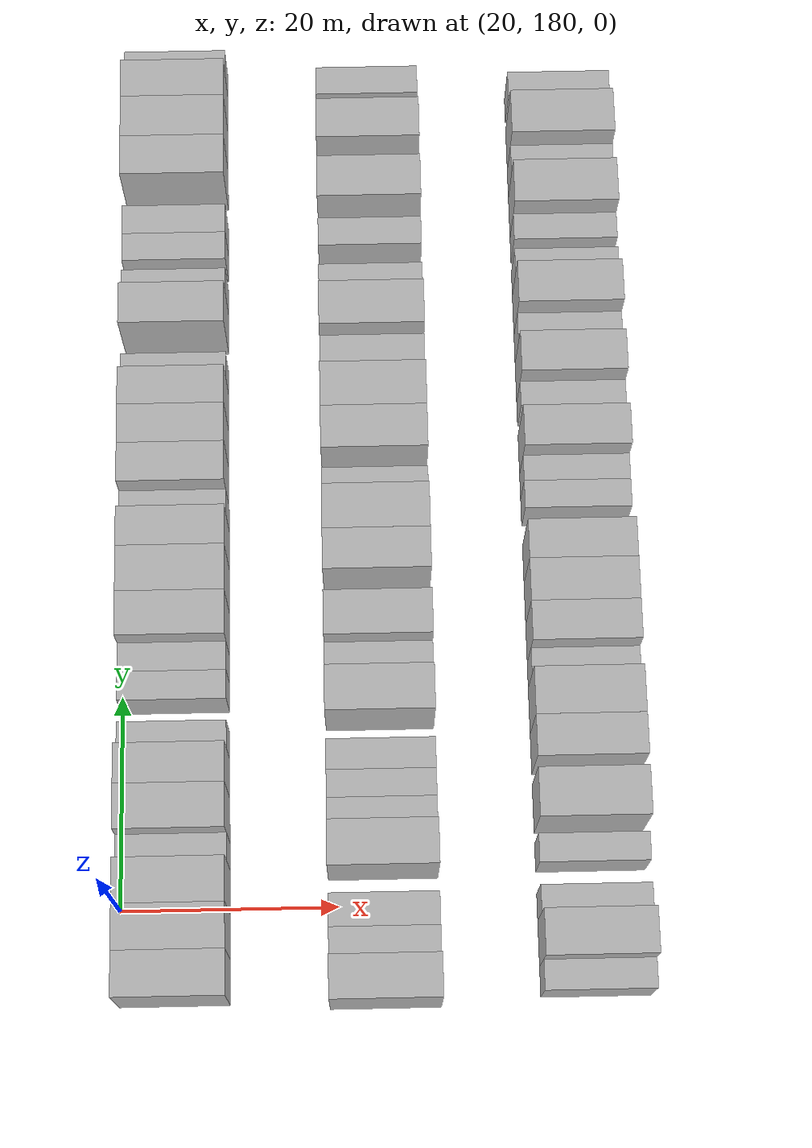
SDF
<sdf version="1.6">
 <world name="default">
  <model name="building_119">
   <static>1</static>
   <pose>25.0000 173.4342 0 0.000000 0.000000 0.000000</pose>
   <link name="link">
    <pose>0 0 4.50 0 0 0</pose>
    <collision name="collision"><geometry><box><size>10.0000 4.0543 9.0000</size></box></geometry></collision>
    <visual name="visual">
     <cast_shadows>0</cast_shadows>
     <geometry><box><size>10.0000 4.0543 9.0000</size></box></geometry>
     <material>
      <script>
       <uri>model://HANNAS_wall/materials/scripts</uri>
       <uri>model://HANNAS_wall/materials/textures</uri>
       <name>vrc/HANNAS_wall</name>
      </script>
     </material>
    </visual>
   </link>
  </model>
  <model name="building_120">
   <static>1</static>
   <pose>25.0000 177.4972 0 0.000000 0.000000 0.000000</pose>
   <link name="link">
    <pose>0 0 4.50 0 0 0</pose>
    <collision name="collision"><geometry><box><size>10.0000 4.0716 9.0000</size></box></geometry></collision>
    <visual name="visual">
     <cast_shadows>0</cast_shadows>
     <geometry><box><size>10.0000 4.0716 9.0000</size></box></geometry>
     <material>
      <script>
       <uri>model://HANNAS_wall/materials/scripts</uri>
       <uri>model://HANNAS_wall/materials/textures</uri>
       <name>vrc/HANNAS_wall</name>
      </script>
     </material>
    </visual>
   </link>
  </model>
  <model name="building_121">
   <static>1</static>
   <pose>25.0000 181.5639 0 0.000000 0.000000 0.000000</pose>
   <link name="link">
    <pose>0 0 4.50 0 0 0</pose>
    <collision name="collision"><geometry><box><size>10.0000 4.0619 9.0000</size></box></geometry></collision>
    <visual name="visual">
     <cast_shadows>0</cast_shadows>
     <geometry><box><size>10.0000 4.0619 9.0000</size></box></geometry>
     <material>
      <script>
       <uri>model://HANNAS_wall/materials/scripts</uri>
       <uri>model://HANNAS_wall/materials/textures</uri>
       <name>vrc/HANNAS_wall</name>
      </script>
     </material>
    </visual>
   </link>
  </model>
  <model name="building_122">
   <static>1</static>
   <pose>25.0000 184.8474 0 0.000000 0.000000 0.000000</pose>
   <link name="link">
    <pose>0 0 3.00 0 0 0</pose>
    <collision name="collision"><geometry><box><size>10.0000 2.5050 6.0000</size></box></geometry></collision>
    <visual name="visual">
     <cast_shadows>0</cast_shadows>
     <geometry><box><size>10.0000 2.5050 6.0000</size></box></geometry>
     <material>
      <script>
       <uri>model://HANNAS_wall/materials/scripts</uri>
       <uri>model://HANNAS_wall/materials/textures</uri>
       <name>vrc/HANNAS_wall</name>
      </script>
     </material>
    </visual>
   </link>
  </model>
  <model name="building_123">
   <static>1</static>
   <pose>25.0000 188.1382 0 0.000000 0.000000 0.000000</pose>
   <link name="link">
    <pose>0 0 4.50 0 0 0</pose>
    <collision name="collision"><geometry><box><size>10.0000 4.0767 9.0000</size></box></geometry></collision>
    <visual name="visual">
     <cast_shadows>0</cast_shadows>
     <geometry><box><size>10.0000 4.0767 9.0000</size></box></geometry>
     <material>
      <script>
       <uri>model://HANNAS_wall/materials/scripts</uri>
       <uri>model://HANNAS_wall/materials/textures</uri>
       <name>vrc/HANNAS_wall</name>
      </script>
     </material>
    </visual>
   </link>
  </model>
  <model name="building_124">
   <static>1</static>
   <pose>25.0000 192.0064 0 0.000000 0.000000 0.000000</pose>
   <link name="link">
    <pose>0 0 4.50 0 0 0</pose>
    <collision name="collision"><geometry><box><size>10.0000 3.6597 9.0000</size></box></geometry></collision>
    <visual name="visual">
     <cast_shadows>0</cast_shadows>
     <geometry><box><size>10.0000 3.6597 9.0000</size></box></geometry>
     <material>
      <script>
       <uri>model://HANNAS_wall/materials/scripts</uri>
       <uri>model://HANNAS_wall/materials/textures</uri>
       <name>vrc/HANNAS_wall</name>
      </script>
     </material>
    </visual>
   </link>
  </model>
  <model name="building_125">
   <static>1</static>
   <pose>25.0000 195.1112 0 0.000000 0.000000 0.000000</pose>
   <link name="link">
    <pose>0 0 3.00 0 0 0</pose>
    <collision name="collision"><geometry><box><size>10.0000 2.5499 6.0000</size></box></geometry></collision>
    <visual name="visual">
     <cast_shadows>0</cast_shadows>
     <geometry><box><size>10.0000 2.5499 6.0000</size></box></geometry>
     <material>
      <script>
       <uri>model://HANNAS_wall/materials/scripts</uri>
       <uri>model://HANNAS_wall/materials/textures</uri>
       <name>vrc/HANNAS_wall</name>
      </script>
     </material>
    </visual>
   </link>
  </model>
  <model name="building_126">
   <static>1</static>
   <pose>25.0000 199.7304 0 0.000000 0.000000 0.000000</pose>
   <link name="link">
    <pose>0 0 3.00 0 0 0</pose>
    <collision name="collision"><geometry><box><size>10.0000 2.6884 6.0000</size></box></geometry></collision>
    <visual name="visual">
     <cast_shadows>0</cast_shadows>
     <geometry><box><size>10.0000 2.6884 6.0000</size></box></geometry>
     <material>
      <script>
       <uri>model://HANNAS_wall/materials/scripts</uri>
       <uri>model://HANNAS_wall/materials/textures</uri>
       <name>vrc/HANNAS_wall</name>
      </script>
     </material>
    </visual>
   </link>
  </model>
  <model name="building_127">
   <static>1</static>
   <pose>25.0000 202.4162 0 0.000000 0.000000 0.000000</pose>
   <link name="link">
    <pose>0 0 3.00 0 0 0</pose>
    <collision name="collision"><geometry><box><size>10.0000 2.6832 6.0000</size></box></geometry></collision>
    <visual name="visual">
     <cast_shadows>0</cast_shadows>
     <geometry><box><size>10.0000 2.6832 6.0000</size></box></geometry>
     <material>
      <script>
       <uri>model://HANNAS_wall/materials/scripts</uri>
       <uri>model://HANNAS_wall/materials/textures</uri>
       <name>vrc/HANNAS_wall</name>
      </script>
     </material>
    </visual>
   </link>
  </model>
  <model name="building_128">
   <static>1</static>
   <pose>25.0000 205.8322 0 0.000000 0.000000 0.000000</pose>
   <link name="link">
    <pose>0 0 4.50 0 0 0</pose>
    <collision name="collision"><geometry><box><size>10.0000 4.1487 9.0000</size></box></geometry></collision>
    <visual name="visual">
     <cast_shadows>0</cast_shadows>
     <geometry><box><size>10.0000 4.1487 9.0000</size></box></geometry>
     <material>
      <script>
       <uri>model://HANNAS_wall/materials/scripts</uri>
       <uri>model://HANNAS_wall/materials/textures</uri>
       <name>vrc/HANNAS_wall</name>
      </script>
     </material>
    </visual>
   </link>
  </model>
  <model name="building_129">
   <static>1</static>
   <pose>25.0000 210.0730 0 0.000000 0.000000 0.000000</pose>
   <link name="link">
    <pose>0 0 4.50 0 0 0</pose>
    <collision name="collision"><geometry><box><size>10.0000 4.3329 9.0000</size></box></geometry></collision>
    <visual name="visual">
     <cast_shadows>0</cast_shadows>
     <geometry><box><size>10.0000 4.3329 9.0000</size></box></geometry>
     <material>
      <script>
       <uri>model://HANNAS_wall/materials/scripts</uri>
       <uri>model://HANNAS_wall/materials/textures</uri>
       <name>vrc/HANNAS_wall</name>
      </script>
     </material>
    </visual>
   </link>
  </model>
  <model name="building_130">
   <static>1</static>
   <pose>25.0000 214.1266 0 0.000000 0.000000 0.000000</pose>
   <link name="link">
    <pose>0 0 4.50 0 0 0</pose>
    <collision name="collision"><geometry><box><size>10.0000 3.7743 9.0000</size></box></geometry></collision>
    <visual name="visual">
     <cast_shadows>0</cast_shadows>
     <geometry><box><size>10.0000 3.7743 9.0000</size></box></geometry>
     <material>
      <script>
       <uri>model://HANNAS_wall/materials/scripts</uri>
       <uri>model://HANNAS_wall/materials/textures</uri>
       <name>vrc/HANNAS_wall</name>
      </script>
     </material>
    </visual>
   </link>
  </model>
  <model name="building_131">
   <static>1</static>
   <pose>25.0000 217.2199 0 0.000000 0.000000 0.000000</pose>
   <link name="link">
    <pose>0 0 3.00 0 0 0</pose>
    <collision name="collision"><geometry><box><size>10.0000 2.4122 6.0000</size></box></geometry></collision>
    <visual name="visual">
     <cast_shadows>0</cast_shadows>
     <geometry><box><size>10.0000 2.4122 6.0000</size></box></geometry>
     <material>
      <script>
       <uri>model://HANNAS_wall/materials/scripts</uri>
       <uri>model://HANNAS_wall/materials/textures</uri>
       <name>vrc/HANNAS_wall</name>
      </script>
     </material>
    </visual>
   </link>
  </model>
  <model name="building_132">
   <static>1</static>
   <pose>25.0000 220.3146 0 0.000000 0.000000 0.000000</pose>
   <link name="link">
    <pose>0 0 4.50 0 0 0</pose>
    <collision name="collision"><geometry><box><size>10.0000 3.7773 9.0000</size></box></geometry></collision>
    <visual name="visual">
     <cast_shadows>0</cast_shadows>
     <geometry><box><size>10.0000 3.7773 9.0000</size></box></geometry>
     <material>
      <script>
       <uri>model://HANNAS_wall/materials/scripts</uri>
       <uri>model://HANNAS_wall/materials/textures</uri>
       <name>vrc/HANNAS_wall</name>
      </script>
     </material>
    </visual>
   </link>
  </model>
  <model name="building_133">
   <static>1</static>
   <pose>25.0000 224.0953 0 0.000000 0.000000 0.000000</pose>
   <link name="link">
    <pose>0 0 4.50 0 0 0</pose>
    <collision name="collision"><geometry><box><size>10.0000 3.7841 9.0000</size></box></geometry></collision>
    <visual name="visual">
     <cast_shadows>0</cast_shadows>
     <geometry><box><size>10.0000 3.7841 9.0000</size></box></geometry>
     <material>
      <script>
       <uri>model://HANNAS_wall/materials/scripts</uri>
       <uri>model://HANNAS_wall/materials/textures</uri>
       <name>vrc/HANNAS_wall</name>
      </script>
     </material>
    </visual>
   </link>
  </model>
  <model name="building_134">
   <static>1</static>
   <pose>25.0000 227.8625 0 0.000000 0.000000 0.000000</pose>
   <link name="link">
    <pose>0 0 4.50 0 0 0</pose>
    <collision name="collision"><geometry><box><size>10.0000 3.7503 9.0000</size></box></geometry></collision>
    <visual name="visual">
     <cast_shadows>0</cast_shadows>
     <geometry><box><size>10.0000 3.7503 9.0000</size></box></geometry>
     <material>
      <script>
       <uri>model://HANNAS_wall/materials/scripts</uri>
       <uri>model://HANNAS_wall/materials/textures</uri>
       <name>vrc/HANNAS_wall</name>
      </script>
     </material>
    </visual>
   </link>
  </model>
  <model name="building_135">
   <static>1</static>
   <pose>25.0000 230.9534 0 0.000000 0.000000 0.000000</pose>
   <link name="link">
    <pose>0 0 3.00 0 0 0</pose>
    <collision name="collision"><geometry><box><size>10.0000 2.4314 6.0000</size></box></geometry></collision>
    <visual name="visual">
     <cast_shadows>0</cast_shadows>
     <geometry><box><size>10.0000 2.4314 6.0000</size></box></geometry>
     <material>
      <script>
       <uri>model://HANNAS_wall/materials/scripts</uri>
       <uri>model://HANNAS_wall/materials/textures</uri>
       <name>vrc/HANNAS_wall</name>
      </script>
     </material>
    </visual>
   </link>
  </model>
  <model name="building_136">
   <static>1</static>
   <pose>25.0000 236.1992 0 0.000000 0.000000 0.000000</pose>
   <link name="link">
    <pose>0 0 4.50 0 0 0</pose>
    <collision name="collision"><geometry><box><size>10.0000 4.0601 9.0000</size></box></geometry></collision>
    <visual name="visual">
     <cast_shadows>0</cast_shadows>
     <geometry><box><size>10.0000 4.0601 9.0000</size></box></geometry>
     <material>
      <script>
       <uri>model://HANNAS_wall/materials/scripts</uri>
       <uri>model://HANNAS_wall/materials/textures</uri>
       <name>vrc/HANNAS_wall</name>
      </script>
     </material>
    </visual>
   </link>
  </model>
  <model name="building_137">
   <static>1</static>
   <pose>25.0000 239.5168 0 0.000000 0.000000 0.000000</pose>
   <link name="link">
    <pose>0 0 3.00 0 0 0</pose>
    <collision name="collision"><geometry><box><size>10.0000 2.5751 6.0000</size></box></geometry></collision>
    <visual name="visual">
     <cast_shadows>0</cast_shadows>
     <geometry><box><size>10.0000 2.5751 6.0000</size></box></geometry>
     <material>
      <script>
       <uri>model://HANNAS_wall/materials/scripts</uri>
       <uri>model://HANNAS_wall/materials/textures</uri>
       <name>vrc/HANNAS_wall</name>
      </script>
     </material>
    </visual>
   </link>
  </model>
  <model name="building_138">
   <static>1</static>
   <pose>25.0000 243.2048 0 0.000000 0.000000 0.000000</pose>
   <link name="link">
    <pose>0 0 3.00 0 0 0</pose>
    <collision name="collision"><geometry><box><size>10.0000 2.8009 6.0000</size></box></geometry></collision>
    <visual name="visual">
     <cast_shadows>0</cast_shadows>
     <geometry><box><size>10.0000 2.8009 6.0000</size></box></geometry>
     <material>
      <script>
       <uri>model://HANNAS_wall/materials/scripts</uri>
       <uri>model://HANNAS_wall/materials/textures</uri>
       <name>vrc/HANNAS_wall</name>
      </script>
     </material>
    </visual>
   </link>
  </model>
  <model name="building_139">
   <static>1</static>
   <pose>25.0000 246.0680 0 0.000000 0.000000 0.000000</pose>
   <link name="link">
    <pose>0 0 3.00 0 0 0</pose>
    <collision name="collision"><geometry><box><size>10.0000 2.9255 6.0000</size></box></geometry></collision>
    <visual name="visual">
     <cast_shadows>0</cast_shadows>
     <geometry><box><size>10.0000 2.9255 6.0000</size></box></geometry>
     <material>
      <script>
       <uri>model://HANNAS_wall/materials/scripts</uri>
       <uri>model://HANNAS_wall/materials/textures</uri>
       <name>vrc/HANNAS_wall</name>
      </script>
     </material>
    </visual>
   </link>
  </model>
  <model name="building_140">
   <static>1</static>
   <pose>25.0000 251.5489 0 0.000000 0.000000 0.000000</pose>
   <link name="link">
    <pose>0 0 4.50 0 0 0</pose>
    <collision name="collision"><geometry><box><size>10.0000 4.0363 9.0000</size></box></geometry></collision>
    <visual name="visual">
     <cast_shadows>0</cast_shadows>
     <geometry><box><size>10.0000 4.0363 9.0000</size></box></geometry>
     <material>
      <script>
       <uri>model://HANNAS_wall/materials/scripts</uri>
       <uri>model://HANNAS_wall/materials/textures</uri>
       <name>vrc/HANNAS_wall</name>
      </script>
     </material>
    </visual>
   </link>
  </model>
  <model name="building_141">
   <static>1</static>
   <pose>25.0000 255.6926 0 0.000000 0.000000 0.000000</pose>
   <link name="link">
    <pose>0 0 4.50 0 0 0</pose>
    <collision name="collision"><geometry><box><size>10.0000 4.2512 9.0000</size></box></geometry></collision>
    <visual name="visual">
     <cast_shadows>0</cast_shadows>
     <geometry><box><size>10.0000 4.2512 9.0000</size></box></geometry>
     <material>
      <script>
       <uri>model://HANNAS_wall/materials/scripts</uri>
       <uri>model://HANNAS_wall/materials/textures</uri>
       <name>vrc/HANNAS_wall</name>
      </script>
     </material>
    </visual>
   </link>
  </model>
  <model name="building_142">
   <static>1</static>
   <pose>25.0000 259.7587 0 0.000000 0.000000 0.000000</pose>
   <link name="link">
    <pose>0 0 4.50 0 0 0</pose>
    <collision name="collision"><geometry><box><size>10.0000 3.8809 9.0000</size></box></geometry></collision>
    <visual name="visual">
     <cast_shadows>0</cast_shadows>
     <geometry><box><size>10.0000 3.8809 9.0000</size></box></geometry>
     <material>
      <script>
       <uri>model://HANNAS_wall/materials/scripts</uri>
       <uri>model://HANNAS_wall/materials/textures</uri>
       <name>vrc/HANNAS_wall</name>
      </script>
     </material>
    </visual>
   </link>
  </model>
  <model name="building_143">
   <static>1</static>
   <pose>25.0000 262.9353 0 0.000000 0.000000 0.000000</pose>
   <link name="link">
    <pose>0 0 3.00 0 0 0</pose>
    <collision name="collision"><geometry><box><size>10.0000 2.4724 6.0000</size></box></geometry></collision>
    <visual name="visual">
     <cast_shadows>0</cast_shadows>
     <geometry><box><size>10.0000 2.4724 6.0000</size></box></geometry>
     <material>
      <script>
       <uri>model://HANNAS_wall/materials/scripts</uri>
       <uri>model://HANNAS_wall/materials/textures</uri>
       <name>vrc/HANNAS_wall</name>
      </script>
     </material>
    </visual>
   </link>
  </model>
  <model name="building_287">
   <static>1</static>
   <pose>44.0000 172.8153 0 0.000000 0.000000 0.000000</pose>
   <link name="link">
    <pose>0 0 4.50 0 0 0</pose>
    <collision name="collision"><geometry><box><size>10.0000 3.8922 9.0000</size></box></geometry></collision>
    <visual name="visual">
     <cast_shadows>0</cast_shadows>
     <geometry><box><size>10.0000 3.8922 9.0000</size></box></geometry>
     <material>
      <script>
       <uri>model://HANNAS_wall/materials/scripts</uri>
       <uri>model://HANNAS_wall/materials/textures</uri>
       <name>vrc/HANNAS_wall</name>
      </script>
     </material>
    </visual>
   </link>
  </model>
  <model name="building_288">
   <static>1</static>
   <pose>44.0000 176.1317 0 0.000000 0.000000 0.000000</pose>
   <link name="link">
    <pose>0 0 3.00 0 0 0</pose>
    <collision name="collision"><geometry><box><size>10.0000 2.7406 6.0000</size></box></geometry></collision>
    <visual name="visual">
     <cast_shadows>0</cast_shadows>
     <geometry><box><size>10.0000 2.7406 6.0000</size></box></geometry>
     <material>
      <script>
       <uri>model://HANNAS_wall/materials/scripts</uri>
       <uri>model://HANNAS_wall/materials/textures</uri>
       <name>vrc/HANNAS_wall</name>
      </script>
     </material>
    </visual>
   </link>
  </model>
  <model name="building_289">
   <static>1</static>
   <pose>44.0000 178.9980 0 0.000000 0.000000 0.000000</pose>
   <link name="link">
    <pose>0 0 3.00 0 0 0</pose>
    <collision name="collision"><geometry><box><size>10.0000 2.9919 6.0000</size></box></geometry></collision>
    <visual name="visual">
     <cast_shadows>0</cast_shadows>
     <geometry><box><size>10.0000 2.9919 6.0000</size></box></geometry>
     <material>
      <script>
       <uri>model://HANNAS_wall/materials/scripts</uri>
       <uri>model://HANNAS_wall/materials/textures</uri>
       <name>vrc/HANNAS_wall</name>
      </script>
     </material>
    </visual>
   </link>
  </model>
  <model name="building_290">
   <static>1</static>
   <pose>44.0000 184.5447 0 0.000000 0.000000 0.000000</pose>
   <link name="link">
    <pose>0 0 4.50 0 0 0</pose>
    <collision name="collision"><geometry><box><size>10.0000 4.1014 9.0000</size></box></geometry></collision>
    <visual name="visual">
     <cast_shadows>0</cast_shadows>
     <geometry><box><size>10.0000 4.1014 9.0000</size></box></geometry>
     <material>
      <script>
       <uri>model://HANNAS_wall/materials/scripts</uri>
       <uri>model://HANNAS_wall/materials/textures</uri>
       <name>vrc/HANNAS_wall</name>
      </script>
     </material>
    </visual>
   </link>
  </model>
  <model name="building_291">
   <static>1</static>
   <pose>44.0000 187.8324 0 0.000000 0.000000 0.000000</pose>
   <link name="link">
    <pose>0 0 3.00 0 0 0</pose>
    <collision name="collision"><geometry><box><size>10.0000 2.4740 6.0000</size></box></geometry></collision>
    <visual name="visual">
     <cast_shadows>0</cast_shadows>
     <geometry><box><size>10.0000 2.4740 6.0000</size></box></geometry>
     <material>
      <script>
       <uri>model://HANNAS_wall/materials/scripts</uri>
       <uri>model://HANNAS_wall/materials/textures</uri>
       <name>vrc/HANNAS_wall</name>
      </script>
     </material>
    </visual>
   </link>
  </model>
  <model name="building_292">
   <static>1</static>
   <pose>44.0000 190.3368 0 0.000000 0.000000 0.000000</pose>
   <link name="link">
    <pose>0 0 3.00 0 0 0</pose>
    <collision name="collision"><geometry><box><size>10.0000 2.5349 6.0000</size></box></geometry></collision>
    <visual name="visual">
     <cast_shadows>0</cast_shadows>
     <geometry><box><size>10.0000 2.5349 6.0000</size></box></geometry>
     <material>
      <script>
       <uri>model://HANNAS_wall/materials/scripts</uri>
       <uri>model://HANNAS_wall/materials/textures</uri>
       <name>vrc/HANNAS_wall</name>
      </script>
     </material>
    </visual>
   </link>
  </model>
  <model name="building_293">
   <static>1</static>
   <pose>44.0000 193.0226 0 0.000000 0.000000 0.000000</pose>
   <link name="link">
    <pose>0 0 3.00 0 0 0</pose>
    <collision name="collision"><geometry><box><size>10.0000 2.8368 6.0000</size></box></geometry></collision>
    <visual name="visual">
     <cast_shadows>0</cast_shadows>
     <geometry><box><size>10.0000 2.8368 6.0000</size></box></geometry>
     <material>
      <script>
       <uri>model://HANNAS_wall/materials/scripts</uri>
       <uri>model://HANNAS_wall/materials/textures</uri>
       <name>vrc/HANNAS_wall</name>
      </script>
     </material>
    </visual>
   </link>
  </model>
  <model name="building_294">
   <static>1</static>
   <pose>44.0000 198.5427 0 0.000000 0.000000 0.000000</pose>
   <link name="link">
    <pose>0 0 4.50 0 0 0</pose>
    <collision name="collision"><geometry><box><size>10.0000 4.2035 9.0000</size></box></geometry></collision>
    <visual name="visual">
     <cast_shadows>0</cast_shadows>
     <geometry><box><size>10.0000 4.2035 9.0000</size></box></geometry>
     <material>
      <script>
       <uri>model://HANNAS_wall/materials/scripts</uri>
       <uri>model://HANNAS_wall/materials/textures</uri>
       <name>vrc/HANNAS_wall</name>
      </script>
     </material>
    </visual>
   </link>
  </model>
  <model name="building_295">
   <static>1</static>
   <pose>44.0000 202.0481 0 0.000000 0.000000 0.000000</pose>
   <link name="link">
    <pose>0 0 3.00 0 0 0</pose>
    <collision name="collision"><geometry><box><size>10.0000 2.8074 6.0000</size></box></geometry></collision>
    <visual name="visual">
     <cast_shadows>0</cast_shadows>
     <geometry><box><size>10.0000 2.8074 6.0000</size></box></geometry>
     <material>
      <script>
       <uri>model://HANNAS_wall/materials/scripts</uri>
       <uri>model://HANNAS_wall/materials/textures</uri>
       <name>vrc/HANNAS_wall</name>
      </script>
     </material>
    </visual>
   </link>
  </model>
  <model name="building_296">
   <static>1</static>
   <pose>44.0000 205.5400 0 0.000000 0.000000 0.000000</pose>
   <link name="link">
    <pose>0 0 4.50 0 0 0</pose>
    <collision name="collision"><geometry><box><size>10.0000 4.1763 9.0000</size></box></geometry></collision>
    <visual name="visual">
     <cast_shadows>0</cast_shadows>
     <geometry><box><size>10.0000 4.1763 9.0000</size></box></geometry>
     <material>
      <script>
       <uri>model://HANNAS_wall/materials/scripts</uri>
       <uri>model://HANNAS_wall/materials/textures</uri>
       <name>vrc/HANNAS_wall</name>
      </script>
     </material>
    </visual>
   </link>
  </model>
  <model name="building_297">
   <static>1</static>
   <pose>44.0000 211.5687 0 0.000000 0.000000 0.000000</pose>
   <link name="link">
    <pose>0 0 4.50 0 0 0</pose>
    <collision name="collision"><geometry><box><size>10.0000 3.8811 9.0000</size></box></geometry></collision>
    <visual name="visual">
     <cast_shadows>0</cast_shadows>
     <geometry><box><size>10.0000 3.8811 9.0000</size></box></geometry>
     <material>
      <script>
       <uri>model://HANNAS_wall/materials/scripts</uri>
       <uri>model://HANNAS_wall/materials/textures</uri>
       <name>vrc/HANNAS_wall</name>
      </script>
     </material>
    </visual>
   </link>
  </model>
  <model name="building_298">
   <static>1</static>
   <pose>44.0000 215.6663 0 0.000000 0.000000 0.000000</pose>
   <link name="link">
    <pose>0 0 4.50 0 0 0</pose>
    <collision name="collision"><geometry><box><size>10.0000 4.3139 9.0000</size></box></geometry></collision>
    <visual name="visual">
     <cast_shadows>0</cast_shadows>
     <geometry><box><size>10.0000 4.3139 9.0000</size></box></geometry>
     <material>
      <script>
       <uri>model://HANNAS_wall/materials/scripts</uri>
       <uri>model://HANNAS_wall/materials/textures</uri>
       <name>vrc/HANNAS_wall</name>
      </script>
     </material>
    </visual>
   </link>
  </model>
  <model name="building_299">
   <static>1</static>
   <pose>44.0000 219.0847 0 0.000000 0.000000 0.000000</pose>
   <link name="link">
    <pose>0 0 3.00 0 0 0</pose>
    <collision name="collision"><geometry><box><size>10.0000 2.5230 6.0000</size></box></geometry></collision>
    <visual name="visual">
     <cast_shadows>0</cast_shadows>
     <geometry><box><size>10.0000 2.5230 6.0000</size></box></geometry>
     <material>
      <script>
       <uri>model://HANNAS_wall/materials/scripts</uri>
       <uri>model://HANNAS_wall/materials/textures</uri>
       <name>vrc/HANNAS_wall</name>
      </script>
     </material>
    </visual>
   </link>
  </model>
  <model name="building_300">
   <static>1</static>
   <pose>44.0000 223.4150 0 0.000000 0.000000 0.000000</pose>
   <link name="link">
    <pose>0 0 4.50 0 0 0</pose>
    <collision name="collision"><geometry><box><size>10.0000 4.1376 9.0000</size></box></geometry></collision>
    <visual name="visual">
     <cast_shadows>0</cast_shadows>
     <geometry><box><size>10.0000 4.1376 9.0000</size></box></geometry>
     <material>
      <script>
       <uri>model://HANNAS_wall/materials/scripts</uri>
       <uri>model://HANNAS_wall/materials/textures</uri>
       <name>vrc/HANNAS_wall</name>
      </script>
     </material>
    </visual>
   </link>
  </model>
  <model name="building_301">
   <static>1</static>
   <pose>44.0000 227.6644 0 0.000000 0.000000 0.000000</pose>
   <link name="link">
    <pose>0 0 4.50 0 0 0</pose>
    <collision name="collision"><geometry><box><size>10.0000 4.3613 9.0000</size></box></geometry></collision>
    <visual name="visual">
     <cast_shadows>0</cast_shadows>
     <geometry><box><size>10.0000 4.3613 9.0000</size></box></geometry>
     <material>
      <script>
       <uri>model://HANNAS_wall/materials/scripts</uri>
       <uri>model://HANNAS_wall/materials/textures</uri>
       <name>vrc/HANNAS_wall</name>
      </script>
     </material>
    </visual>
   </link>
  </model>
  <model name="building_302">
   <static>1</static>
   <pose>44.0000 232.2528 0 0.000000 0.000000 0.000000</pose>
   <link name="link">
    <pose>0 0 3.00 0 0 0</pose>
    <collision name="collision"><geometry><box><size>10.0000 2.8153 6.0000</size></box></geometry></collision>
    <visual name="visual">
     <cast_shadows>0</cast_shadows>
     <geometry><box><size>10.0000 2.8153 6.0000</size></box></geometry>
     <material>
      <script>
       <uri>model://HANNAS_wall/materials/scripts</uri>
       <uri>model://HANNAS_wall/materials/textures</uri>
       <name>vrc/HANNAS_wall</name>
      </script>
     </material>
    </visual>
   </link>
  </model>
  <model name="building_303">
   <static>1</static>
   <pose>44.0000 235.8449 0 0.000000 0.000000 0.000000</pose>
   <link name="link">
    <pose>0 0 4.50 0 0 0</pose>
    <collision name="collision"><geometry><box><size>10.0000 4.3689 9.0000</size></box></geometry></collision>
    <visual name="visual">
     <cast_shadows>0</cast_shadows>
     <geometry><box><size>10.0000 4.3689 9.0000</size></box></geometry>
     <material>
      <script>
       <uri>model://HANNAS_wall/materials/scripts</uri>
       <uri>model://HANNAS_wall/materials/textures</uri>
       <name>vrc/HANNAS_wall</name>
      </script>
     </material>
    </visual>
   </link>
  </model>
  <model name="building_304">
   <static>1</static>
   <pose>44.0000 239.5217 0 0.000000 0.000000 0.000000</pose>
   <link name="link">
    <pose>0 0 3.00 0 0 0</pose>
    <collision name="collision"><geometry><box><size>10.0000 2.9846 6.0000</size></box></geometry></collision>
    <visual name="visual">
     <cast_shadows>0</cast_shadows>
     <geometry><box><size>10.0000 2.9846 6.0000</size></box></geometry>
     <material>
      <script>
       <uri>model://HANNAS_wall/materials/scripts</uri>
       <uri>model://HANNAS_wall/materials/textures</uri>
       <name>vrc/HANNAS_wall</name>
      </script>
     </material>
    </visual>
   </link>
  </model>
  <model name="building_305">
   <static>1</static>
   <pose>44.0000 244.4302 0 0.000000 0.000000 0.000000</pose>
   <link name="link">
    <pose>0 0 3.00 0 0 0</pose>
    <collision name="collision"><geometry><box><size>10.0000 2.8325 6.0000</size></box></geometry></collision>
    <visual name="visual">
     <cast_shadows>0</cast_shadows>
     <geometry><box><size>10.0000 2.8325 6.0000</size></box></geometry>
     <material>
      <script>
       <uri>model://HANNAS_wall/materials/scripts</uri>
       <uri>model://HANNAS_wall/materials/textures</uri>
       <name>vrc/HANNAS_wall</name>
      </script>
     </material>
    </visual>
   </link>
  </model>
  <model name="building_306">
   <static>1</static>
   <pose>44.0000 248.9562 0 0.000000 0.000000 0.000000</pose>
   <link name="link">
    <pose>0 0 4.50 0 0 0</pose>
    <collision name="collision"><geometry><box><size>10.0000 4.2195 9.0000</size></box></geometry></collision>
    <visual name="visual">
     <cast_shadows>0</cast_shadows>
     <geometry><box><size>10.0000 4.2195 9.0000</size></box></geometry>
     <material>
      <script>
       <uri>model://HANNAS_wall/materials/scripts</uri>
       <uri>model://HANNAS_wall/materials/textures</uri>
       <name>vrc/HANNAS_wall</name>
      </script>
     </material>
    </visual>
   </link>
  </model>
  <model name="building_307">
   <static>1</static>
   <pose>44.0000 255.1205 0 0.000000 0.000000 0.000000</pose>
   <link name="link">
    <pose>0 0 4.50 0 0 0</pose>
    <collision name="collision"><geometry><box><size>10.0000 4.1092 9.0000</size></box></geometry></collision>
    <visual name="visual">
     <cast_shadows>0</cast_shadows>
     <geometry><box><size>10.0000 4.1092 9.0000</size></box></geometry>
     <material>
      <script>
       <uri>model://HANNAS_wall/materials/scripts</uri>
       <uri>model://HANNAS_wall/materials/textures</uri>
       <name>vrc/HANNAS_wall</name>
      </script>
     </material>
    </visual>
   </link>
  </model>
  <model name="building_308">
   <static>1</static>
   <pose>44.0000 260.6276 0 0.000000 0.000000 0.000000</pose>
   <link name="link">
    <pose>0 0 3.00 0 0 0</pose>
    <collision name="collision"><geometry><box><size>10.0000 2.9050 6.0000</size></box></geometry></collision>
    <visual name="visual">
     <cast_shadows>0</cast_shadows>
     <geometry><box><size>10.0000 2.9050 6.0000</size></box></geometry>
     <material>
      <script>
       <uri>model://HANNAS_wall/materials/scripts</uri>
       <uri>model://HANNAS_wall/materials/textures</uri>
       <name>vrc/HANNAS_wall</name>
      </script>
     </material>
    </visual>
   </link>
  </model>
  <model name="building_471">
   <static>1</static>
   <pose>63.0000 172.9059 0 0.000000 0.000000 0.000000</pose>
   <link name="link">
    <pose>0 0 3.00 0 0 0</pose>
    <collision name="collision"><geometry><box><size>10.0000 2.6999 6.0000</size></box></geometry></collision>
    <visual name="visual">
     <cast_shadows>0</cast_shadows>
     <geometry><box><size>10.0000 2.6999 6.0000</size></box></geometry>
     <material>
      <script>
       <uri>model://HANNAS_wall/materials/scripts</uri>
       <uri>model://HANNAS_wall/materials/textures</uri>
       <name>vrc/HANNAS_wall</name>
      </script>
     </material>
    </visual>
   </link>
  </model>
  <model name="building_472">
   <static>1</static>
   <pose>63.0000 176.3193 0 0.000000 0.000000 0.000000</pose>
   <link name="link">
    <pose>0 0 4.50 0 0 0</pose>
    <collision name="collision"><geometry><box><size>10.0000 4.1270 9.0000</size></box></geometry></collision>
    <visual name="visual">
     <cast_shadows>0</cast_shadows>
     <geometry><box><size>10.0000 4.1270 9.0000</size></box></geometry>
     <material>
      <script>
       <uri>model://HANNAS_wall/materials/scripts</uri>
       <uri>model://HANNAS_wall/materials/textures</uri>
       <name>vrc/HANNAS_wall</name>
      </script>
     </material>
    </visual>
   </link>
  </model>
  <model name="building_473">
   <static>1</static>
   <pose>63.0000 179.6188 0 0.000000 0.000000 0.000000</pose>
   <link name="link">
    <pose>0 0 3.00 0 0 0</pose>
    <collision name="collision"><geometry><box><size>10.0000 2.4719 6.0000</size></box></geometry></collision>
    <visual name="visual">
     <cast_shadows>0</cast_shadows>
     <geometry><box><size>10.0000 2.4719 6.0000</size></box></geometry>
     <material>
      <script>
       <uri>model://HANNAS_wall/materials/scripts</uri>
       <uri>model://HANNAS_wall/materials/textures</uri>
       <name>vrc/HANNAS_wall</name>
      </script>
     </material>
    </visual>
   </link>
  </model>
  <model name="building_474">
   <static>1</static>
   <pose>63.0000 184.1493 0 0.000000 0.000000 0.000000</pose>
   <link name="link">
    <pose>0 0 3.00 0 0 0</pose>
    <collision name="collision"><geometry><box><size>10.0000 2.5891 6.0000</size></box></geometry></collision>
    <visual name="visual">
     <cast_shadows>0</cast_shadows>
     <geometry><box><size>10.0000 2.5891 6.0000</size></box></geometry>
     <material>
      <script>
       <uri>model://HANNAS_wall/materials/scripts</uri>
       <uri>model://HANNAS_wall/materials/textures</uri>
       <name>vrc/HANNAS_wall</name>
      </script>
     </material>
    </visual>
   </link>
  </model>
  <model name="building_475">
   <static>1</static>
   <pose>63.0000 188.6700 0 0.000000 0.000000 0.000000</pose>
   <link name="link">
    <pose>0 0 4.50 0 0 0</pose>
    <collision name="collision"><geometry><box><size>10.0000 4.4522 9.0000</size></box></geometry></collision>
    <visual name="visual">
     <cast_shadows>0</cast_shadows>
     <geometry><box><size>10.0000 4.4522 9.0000</size></box></geometry>
     <material>
      <script>
       <uri>model://HANNAS_wall/materials/scripts</uri>
       <uri>model://HANNAS_wall/materials/textures</uri>
       <name>vrc/HANNAS_wall</name>
      </script>
     </material>
    </visual>
   </link>
  </model>
  <model name="building_476">
   <static>1</static>
   <pose>63.0000 193.7957 0 0.000000 0.000000 0.000000</pose>
   <link name="link">
    <pose>0 0 4.50 0 0 0</pose>
    <collision name="collision"><geometry><box><size>10.0000 3.7992 9.0000</size></box></geometry></collision>
    <visual name="visual">
     <cast_shadows>0</cast_shadows>
     <geometry><box><size>10.0000 3.7992 9.0000</size></box></geometry>
     <material>
      <script>
       <uri>model://HANNAS_wall/materials/scripts</uri>
       <uri>model://HANNAS_wall/materials/textures</uri>
       <name>vrc/HANNAS_wall</name>
      </script>
     </material>
    </visual>
   </link>
  </model>
  <model name="building_477">
   <static>1</static>
   <pose>63.0000 197.8956 0 0.000000 0.000000 0.000000</pose>
   <link name="link">
    <pose>0 0 4.50 0 0 0</pose>
    <collision name="collision"><geometry><box><size>10.0000 4.4004 9.0000</size></box></geometry></collision>
    <visual name="visual">
     <cast_shadows>0</cast_shadows>
     <geometry><box><size>10.0000 4.4004 9.0000</size></box></geometry>
     <material>
      <script>
       <uri>model://HANNAS_wall/materials/scripts</uri>
       <uri>model://HANNAS_wall/materials/textures</uri>
       <name>vrc/HANNAS_wall</name>
      </script>
     </material>
    </visual>
   </link>
  </model>
  <model name="building_478">
   <static>1</static>
   <pose>63.0000 201.3198 0 0.000000 0.000000 0.000000</pose>
   <link name="link">
    <pose>0 0 3.00 0 0 0</pose>
    <collision name="collision"><geometry><box><size>10.0000 2.4480 6.0000</size></box></geometry></collision>
    <visual name="visual">
     <cast_shadows>0</cast_shadows>
     <geometry><box><size>10.0000 2.4480 6.0000</size></box></geometry>
     <material>
      <script>
       <uri>model://HANNAS_wall/materials/scripts</uri>
       <uri>model://HANNAS_wall/materials/textures</uri>
       <name>vrc/HANNAS_wall</name>
      </script>
     </material>
    </visual>
   </link>
  </model>
  <model name="building_479">
   <static>1</static>
   <pose>63.0000 204.3957 0 0.000000 0.000000 0.000000</pose>
   <link name="link">
    <pose>0 0 4.50 0 0 0</pose>
    <collision name="collision"><geometry><box><size>10.0000 3.7039 9.0000</size></box></geometry></collision>
    <visual name="visual">
     <cast_shadows>0</cast_shadows>
     <geometry><box><size>10.0000 3.7039 9.0000</size></box></geometry>
     <material>
      <script>
       <uri>model://HANNAS_wall/materials/scripts</uri>
       <uri>model://HANNAS_wall/materials/textures</uri>
       <name>vrc/HANNAS_wall</name>
      </script>
     </material>
    </visual>
   </link>
  </model>
  <model name="building_480">
   <static>1</static>
   <pose>63.0000 208.2567 0 0.000000 0.000000 0.000000</pose>
   <link name="link">
    <pose>0 0 4.50 0 0 0</pose>
    <collision name="collision"><geometry><box><size>10.0000 4.0182 9.0000</size></box></geometry></collision>
    <visual name="visual">
     <cast_shadows>0</cast_shadows>
     <geometry><box><size>10.0000 4.0182 9.0000</size></box></geometry>
     <material>
      <script>
       <uri>model://HANNAS_wall/materials/scripts</uri>
       <uri>model://HANNAS_wall/materials/textures</uri>
       <name>vrc/HANNAS_wall</name>
      </script>
     </material>
    </visual>
   </link>
  </model>
  <model name="building_481">
   <static>1</static>
   <pose>63.0000 212.1349 0 0.000000 0.000000 0.000000</pose>
   <link name="link">
    <pose>0 0 4.50 0 0 0</pose>
    <collision name="collision"><geometry><box><size>10.0000 3.7381 9.0000</size></box></geometry></collision>
    <visual name="visual">
     <cast_shadows>0</cast_shadows>
     <geometry><box><size>10.0000 3.7381 9.0000</size></box></geometry>
     <material>
      <script>
       <uri>model://HANNAS_wall/materials/scripts</uri>
       <uri>model://HANNAS_wall/materials/textures</uri>
       <name>vrc/HANNAS_wall</name>
      </script>
     </material>
    </visual>
   </link>
  </model>
  <model name="building_482">
   <static>1</static>
   <pose>63.0000 217.3417 0 0.000000 0.000000 0.000000</pose>
   <link name="link">
    <pose>0 0 3.00 0 0 0</pose>
    <collision name="collision"><geometry><box><size>10.0000 2.6754 6.0000</size></box></geometry></collision>
    <visual name="visual">
     <cast_shadows>0</cast_shadows>
     <geometry><box><size>10.0000 2.6754 6.0000</size></box></geometry>
     <material>
      <script>
       <uri>model://HANNAS_wall/materials/scripts</uri>
       <uri>model://HANNAS_wall/materials/textures</uri>
       <name>vrc/HANNAS_wall</name>
      </script>
     </material>
    </visual>
   </link>
  </model>
  <model name="building_483">
   <static>1</static>
   <pose>63.0000 219.9281 0 0.000000 0.000000 0.000000</pose>
   <link name="link">
    <pose>0 0 3.00 0 0 0</pose>
    <collision name="collision"><geometry><box><size>10.0000 2.4974 6.0000</size></box></geometry></collision>
    <visual name="visual">
     <cast_shadows>0</cast_shadows>
     <geometry><box><size>10.0000 2.4974 6.0000</size></box></geometry>
     <material>
      <script>
       <uri>model://HANNAS_wall/materials/scripts</uri>
       <uri>model://HANNAS_wall/materials/textures</uri>
       <name>vrc/HANNAS_wall</name>
      </script>
     </material>
    </visual>
   </link>
  </model>
  <model name="building_484">
   <static>1</static>
   <pose>63.0000 223.1501 0 0.000000 0.000000 0.000000</pose>
   <link name="link">
    <pose>0 0 4.50 0 0 0</pose>
    <collision name="collision"><geometry><box><size>10.0000 3.9466 9.0000</size></box></geometry></collision>
    <visual name="visual">
     <cast_shadows>0</cast_shadows>
     <geometry><box><size>10.0000 3.9466 9.0000</size></box></geometry>
     <material>
      <script>
       <uri>model://HANNAS_wall/materials/scripts</uri>
       <uri>model://HANNAS_wall/materials/textures</uri>
       <name>vrc/HANNAS_wall</name>
      </script>
     </material>
    </visual>
   </link>
  </model>
  <model name="building_485">
   <static>1</static>
   <pose>63.0000 227.3454 0 0.000000 0.000000 0.000000</pose>
   <link name="link">
    <pose>0 0 3.00 0 0 0</pose>
    <collision name="collision"><geometry><box><size>10.0000 2.4440 6.0000</size></box></geometry></collision>
    <visual name="visual">
     <cast_shadows>0</cast_shadows>
     <geometry><box><size>10.0000 2.4440 6.0000</size></box></geometry>
     <material>
      <script>
       <uri>model://HANNAS_wall/materials/scripts</uri>
       <uri>model://HANNAS_wall/materials/textures</uri>
       <name>vrc/HANNAS_wall</name>
      </script>
     </material>
    </visual>
   </link>
  </model>
  <model name="building_486">
   <static>1</static>
   <pose>63.0000 230.5685 0 0.000000 0.000000 0.000000</pose>
   <link name="link">
    <pose>0 0 4.50 0 0 0</pose>
    <collision name="collision"><geometry><box><size>10.0000 4.0022 9.0000</size></box></geometry></collision>
    <visual name="visual">
     <cast_shadows>0</cast_shadows>
     <geometry><box><size>10.0000 4.0022 9.0000</size></box></geometry>
     <material>
      <script>
       <uri>model://HANNAS_wall/materials/scripts</uri>
       <uri>model://HANNAS_wall/materials/textures</uri>
       <name>vrc/HANNAS_wall</name>
      </script>
     </material>
    </visual>
   </link>
  </model>
  <model name="building_487">
   <static>1</static>
   <pose>63.0000 234.0539 0 0.000000 0.000000 0.000000</pose>
   <link name="link">
    <pose>0 0 3.00 0 0 0</pose>
    <collision name="collision"><geometry><box><size>10.0000 2.9687 6.0000</size></box></geometry></collision>
    <visual name="visual">
     <cast_shadows>0</cast_shadows>
     <geometry><box><size>10.0000 2.9687 6.0000</size></box></geometry>
     <material>
      <script>
       <uri>model://HANNAS_wall/materials/scripts</uri>
       <uri>model://HANNAS_wall/materials/textures</uri>
       <name>vrc/HANNAS_wall</name>
      </script>
     </material>
    </visual>
   </link>
  </model>
  <model name="building_488">
   <static>1</static>
   <pose>63.0000 237.6168 0 0.000000 0.000000 0.000000</pose>
   <link name="link">
    <pose>0 0 4.50 0 0 0</pose>
    <collision name="collision"><geometry><box><size>10.0000 4.1570 9.0000</size></box></geometry></collision>
    <visual name="visual">
     <cast_shadows>0</cast_shadows>
     <geometry><box><size>10.0000 4.1570 9.0000</size></box></geometry>
     <material>
      <script>
       <uri>model://HANNAS_wall/materials/scripts</uri>
       <uri>model://HANNAS_wall/materials/textures</uri>
       <name>vrc/HANNAS_wall</name>
      </script>
     </material>
    </visual>
   </link>
  </model>
  <model name="building_489">
   <static>1</static>
   <pose>63.0000 240.9694 0 0.000000 0.000000 0.000000</pose>
   <link name="link">
    <pose>0 0 3.00 0 0 0</pose>
    <collision name="collision"><geometry><box><size>10.0000 2.5484 6.0000</size></box></geometry></collision>
    <visual name="visual">
     <cast_shadows>0</cast_shadows>
     <geometry><box><size>10.0000 2.5484 6.0000</size></box></geometry>
     <material>
      <script>
       <uri>model://HANNAS_wall/materials/scripts</uri>
       <uri>model://HANNAS_wall/materials/textures</uri>
       <name>vrc/HANNAS_wall</name>
      </script>
     </material>
    </visual>
   </link>
  </model>
  <model name="building_490">
   <static>1</static>
   <pose>63.0000 244.5644 0 0.000000 0.000000 0.000000</pose>
   <link name="link">
    <pose>0 0 3.00 0 0 0</pose>
    <collision name="collision"><geometry><box><size>10.0000 2.6417 6.0000</size></box></geometry></collision>
    <visual name="visual">
     <cast_shadows>0</cast_shadows>
     <geometry><box><size>10.0000 2.6417 6.0000</size></box></geometry>
     <material>
      <script>
       <uri>model://HANNAS_wall/materials/scripts</uri>
       <uri>model://HANNAS_wall/materials/textures</uri>
       <name>vrc/HANNAS_wall</name>
      </script>
     </material>
    </visual>
   </link>
  </model>
  <model name="building_491">
   <static>1</static>
   <pose>63.0000 248.0706 0 0.000000 0.000000 0.000000</pose>
   <link name="link">
    <pose>0 0 4.50 0 0 0</pose>
    <collision name="collision"><geometry><box><size>10.0000 4.3706 9.0000</size></box></geometry></collision>
    <visual name="visual">
     <cast_shadows>0</cast_shadows>
     <geometry><box><size>10.0000 4.3706 9.0000</size></box></geometry>
     <material>
      <script>
       <uri>model://HANNAS_wall/materials/scripts</uri>
       <uri>model://HANNAS_wall/materials/textures</uri>
       <name>vrc/HANNAS_wall</name>
      </script>
     </material>
    </visual>
   </link>
  </model>
  <model name="building_492">
   <static>1</static>
   <pose>63.0000 251.7375 0 0.000000 0.000000 0.000000</pose>
   <link name="link">
    <pose>0 0 3.00 0 0 0</pose>
    <collision name="collision"><geometry><box><size>10.0000 2.9634 6.0000</size></box></geometry></collision>
    <visual name="visual">
     <cast_shadows>0</cast_shadows>
     <geometry><box><size>10.0000 2.9634 6.0000</size></box></geometry>
     <material>
      <script>
       <uri>model://HANNAS_wall/materials/scripts</uri>
       <uri>model://HANNAS_wall/materials/textures</uri>
       <name>vrc/HANNAS_wall</name>
      </script>
     </material>
    </visual>
   </link>
  </model>
  <model name="building_493">
   <static>1</static>
   <pose>63.0000 255.4487 0 0.000000 0.000000 0.000000</pose>
   <link name="link">
    <pose>0 0 4.50 0 0 0</pose>
    <collision name="collision"><geometry><box><size>10.0000 4.4589 9.0000</size></box></geometry></collision>
    <visual name="visual">
     <cast_shadows>0</cast_shadows>
     <geometry><box><size>10.0000 4.4589 9.0000</size></box></geometry>
     <material>
      <script>
       <uri>model://HANNAS_wall/materials/scripts</uri>
       <uri>model://HANNAS_wall/materials/textures</uri>
       <name>vrc/HANNAS_wall</name>
      </script>
     </material>
    </visual>
   </link>
  </model>
  <model name="building_494">
   <static>1</static>
   <pose>63.0000 259.9333 0 0.000000 0.000000 0.000000</pose>
   <link name="link">
    <pose>0 0 3.00 0 0 0</pose>
    <collision name="collision"><geometry><box><size>10.0000 2.5104 6.0000</size></box></geometry></collision>
    <visual name="visual">
     <cast_shadows>0</cast_shadows>
     <geometry><box><size>10.0000 2.5104 6.0000</size></box></geometry>
     <material>
      <script>
       <uri>model://HANNAS_wall/materials/scripts</uri>
       <uri>model://HANNAS_wall/materials/textures</uri>
       <name>vrc/HANNAS_wall</name>
      </script>
     </material>
    </visual>
   </link>
  </model>
 </world>
</sdf>
